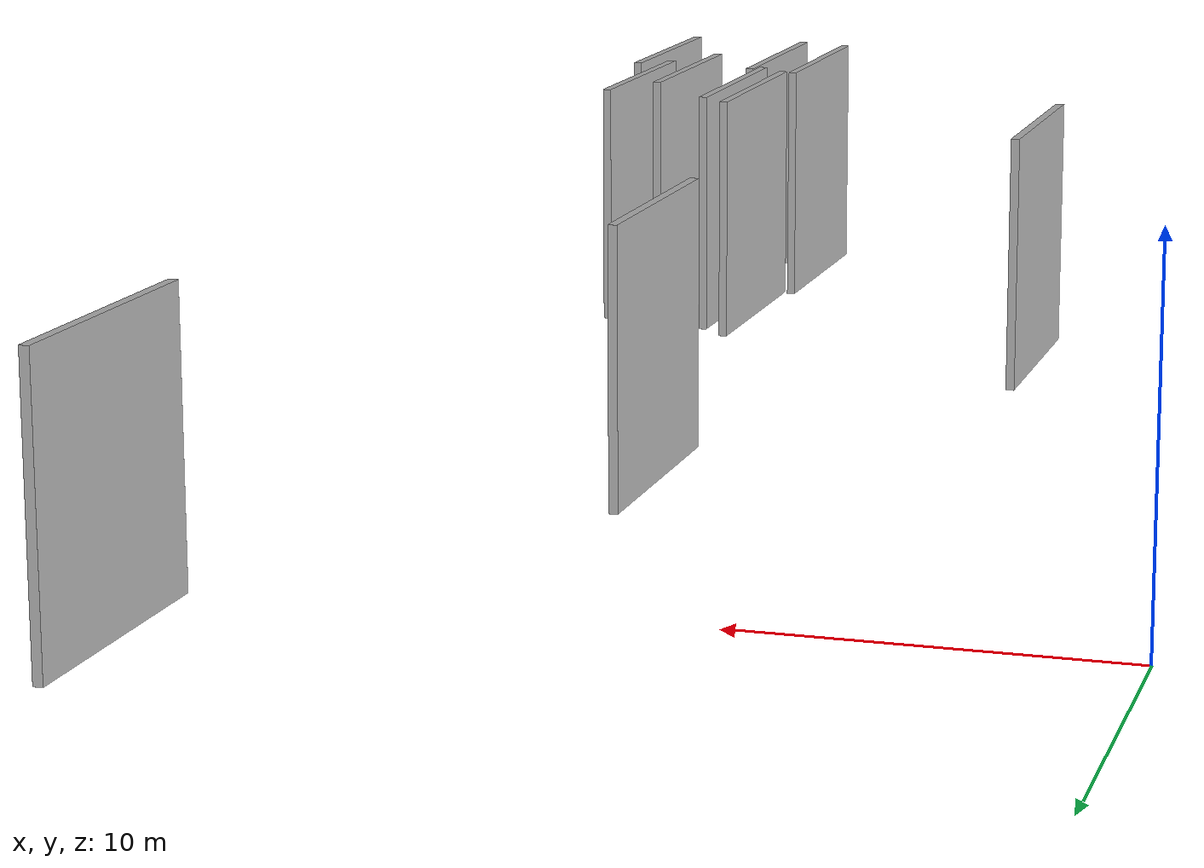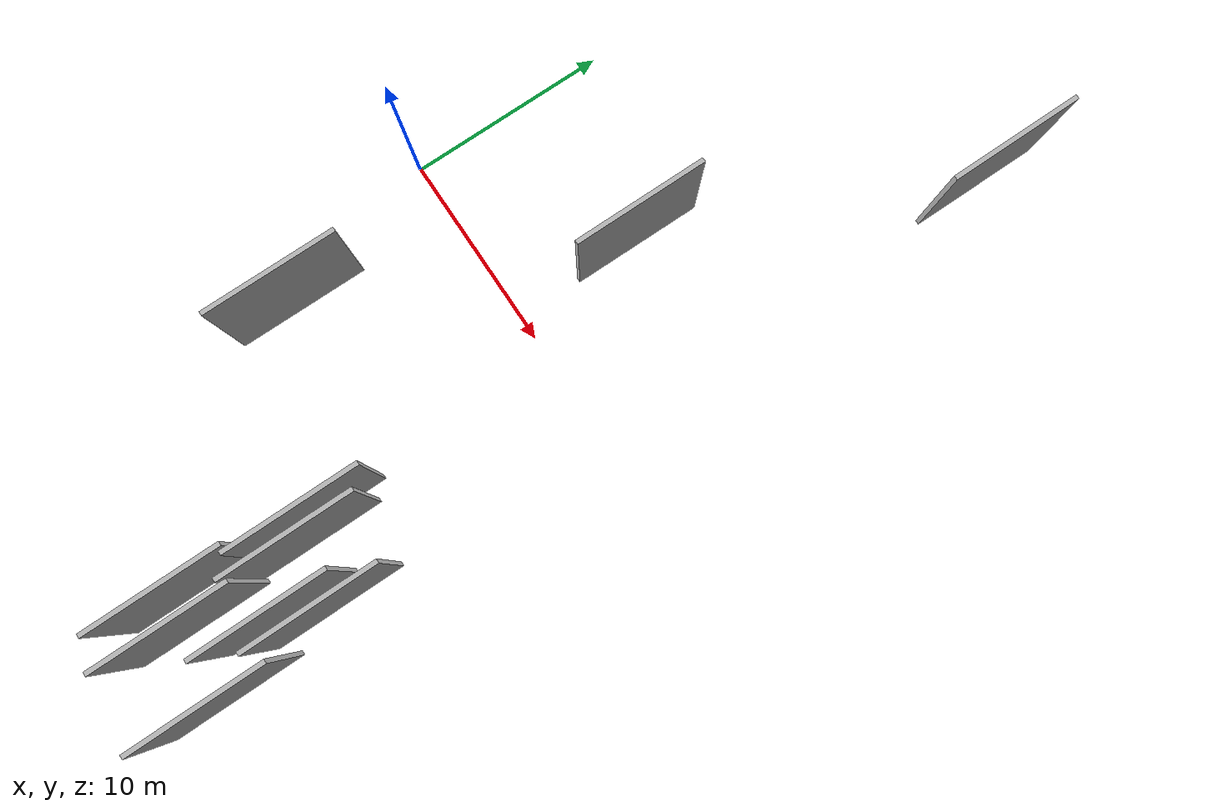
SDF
<sdf version="1.6">
 <world name="default">
  <scene>
   <sky><clouds><speed>12</speed></clouds></sky>
   <ambient>0.4 0.4 0.4 1</ambient>
   <background>0.7 0.7 0.7 1</background>
   <shadows>1</shadows>
  </scene>
  <gravity>0 0 -9.8066</gravity>
  <magnetic_field>6e-06 2.3e-05 -4.2e-05</magnetic_field>
  <physics default="0" name="default_physics" type="ode">
   <ode>
    <solver>
     <type>quick</type>
     <iters>10</iters>
     <sor>1.0</sor>
     <use_dynamic_moi_rescaling>0</use_dynamic_moi_rescaling>
    </solver>
    <constraints>
     <cfm>0</cfm>
     <erp>0.2</erp>
     <contact_max_correcting_vel>100</contact_max_correcting_vel>
     <contact_surface_layer>0.001</contact_surface_layer>
    </constraints>
   </ode>
   <max_step_size>0.004</max_step_size>
   <real_time_factor>1</real_time_factor>
   <real_time_update_rate>250</real_time_update_rate>
  </physics>
  <light name="sun" type="directional">
   <pose>0 0 10 0 0 0</pose>
   <diffuse>0.8 0.8 0.8 1</diffuse>
   <specular>0.2 0.2 0.2 1</specular>
   <attenuation>
    <range>1000</range>
    <constant>0.9</constant>
    <linear>0.01</linear>
    <quadratic>0.001</quadratic>
   </attenuation>
   <direction>-0.5 0.1 -0.9</direction>
  </light>
  <model name="grey_wall_1">
   <static>1</static>
   <pose>15.9617 19.3279 5.0 0.000000 0.000000 1.570796</pose>
   <link name="link">
    <pose>0 0 3.00 0 0 0</pose>
    <collision name="collision"><geometry><box><size>6.00 0.2 6.00</size></box></geometry></collision>
    <visual name="visual">
     <cast_shadows>0</cast_shadows>
     <geometry><box><size>6.00 0.2 6.00</size></box></geometry>
     <material>
      <script>
       <uri>model://HANNAS_wall/materials/scripts</uri>
       <uri>model://HANNAS_wall/materials/textures</uri>
       <name>vrc/HANNAS_wall</name>
      </script>
     </material>
    </visual>
   </link>
  </model>
  <model name="grey_wall_2">
   <static>1</static>
   <pose>13.1244 -12.4977 5.0 0.000000 0.000000 1.570796</pose>
   <link name="link">
    <pose>0 0 3.00 0 0 0</pose>
    <collision name="collision"><geometry><box><size>6.00 0.2 6.00</size></box></geometry></collision>
    <visual name="visual">
     <cast_shadows>0</cast_shadows>
     <geometry><box><size>6.00 0.2 6.00</size></box></geometry>
     <material>
      <script>
       <uri>model://HANNAS_wall/materials/scripts</uri>
       <uri>model://HANNAS_wall/materials/textures</uri>
       <name>vrc/HANNAS_wall</name>
      </script>
     </material>
    </visual>
   </link>
  </model>
  <model name="grey_wall_3">
   <static>1</static>
   <pose>15.0418 -14.8376 5.0 0.000000 0.000000 1.570796</pose>
   <link name="link">
    <pose>0 0 3.00 0 0 0</pose>
    <collision name="collision"><geometry><box><size>6.00 0.2 6.00</size></box></geometry></collision>
    <visual name="visual">
     <cast_shadows>0</cast_shadows>
     <geometry><box><size>6.00 0.2 6.00</size></box></geometry>
     <material>
      <script>
       <uri>model://HANNAS_wall/materials/scripts</uri>
       <uri>model://HANNAS_wall/materials/textures</uri>
       <name>vrc/HANNAS_wall</name>
      </script>
     </material>
    </visual>
   </link>
  </model>
  <model name="grey_wall_4">
   <static>1</static>
   <pose>13.4086 -18.0849 5.0 0.000000 0.000000 1.570796</pose>
   <link name="link">
    <pose>0 0 3.00 0 0 0</pose>
    <collision name="collision"><geometry><box><size>6.00 0.2 6.00</size></box></geometry></collision>
    <visual name="visual">
     <cast_shadows>0</cast_shadows>
     <geometry><box><size>6.00 0.2 6.00</size></box></geometry>
     <material>
      <script>
       <uri>model://HANNAS_wall/materials/scripts</uri>
       <uri>model://HANNAS_wall/materials/textures</uri>
       <name>vrc/HANNAS_wall</name>
      </script>
     </material>
    </visual>
   </link>
  </model>
  <model name="grey_wall_5">
   <static>1</static>
   <pose>12.0958 -17.6185 5.0 0.000000 0.000000 1.570796</pose>
   <link name="link">
    <pose>0 0 3.00 0 0 0</pose>
    <collision name="collision"><geometry><box><size>6.00 0.2 6.00</size></box></geometry></collision>
    <visual name="visual">
     <cast_shadows>0</cast_shadows>
     <geometry><box><size>6.00 0.2 6.00</size></box></geometry>
     <material>
      <script>
       <uri>model://HANNAS_wall/materials/scripts</uri>
       <uri>model://HANNAS_wall/materials/textures</uri>
       <name>vrc/HANNAS_wall</name>
      </script>
     </material>
    </visual>
   </link>
  </model>
  <model name="grey_wall_6">
   <static>1</static>
   <pose>15.8767 -13.1310 5.0 0.000000 0.000000 1.570796</pose>
   <link name="link">
    <pose>0 0 3.00 0 0 0</pose>
    <collision name="collision"><geometry><box><size>6.00 0.2 6.00</size></box></geometry></collision>
    <visual name="visual">
     <cast_shadows>0</cast_shadows>
     <geometry><box><size>6.00 0.2 6.00</size></box></geometry>
     <material>
      <script>
       <uri>model://HANNAS_wall/materials/scripts</uri>
       <uri>model://HANNAS_wall/materials/textures</uri>
       <name>vrc/HANNAS_wall</name>
      </script>
     </material>
    </visual>
   </link>
  </model>
  <model name="grey_wall_7">
   <static>1</static>
   <pose>4.2326 -7.8183 5.0 0.000000 0.000000 1.570796</pose>
   <link name="link">
    <pose>0 0 3.00 0 0 0</pose>
    <collision name="collision"><geometry><box><size>6.00 0.2 6.00</size></box></geometry></collision>
    <visual name="visual">
     <cast_shadows>0</cast_shadows>
     <geometry><box><size>6.00 0.2 6.00</size></box></geometry>
     <material>
      <script>
       <uri>model://HANNAS_wall/materials/scripts</uri>
       <uri>model://HANNAS_wall/materials/textures</uri>
       <name>vrc/HANNAS_wall</name>
      </script>
     </material>
    </visual>
   </link>
  </model>
  <model name="grey_wall_8">
   <static>1</static>
   <pose>12.4023 -11.8223 5.0 0.000000 0.000000 1.570796</pose>
   <link name="link">
    <pose>0 0 3.00 0 0 0</pose>
    <collision name="collision"><geometry><box><size>6.00 0.2 6.00</size></box></geometry></collision>
    <visual name="visual">
     <cast_shadows>0</cast_shadows>
     <geometry><box><size>6.00 0.2 6.00</size></box></geometry>
     <material>
      <script>
       <uri>model://HANNAS_wall/materials/scripts</uri>
       <uri>model://HANNAS_wall/materials/textures</uri>
       <name>vrc/HANNAS_wall</name>
      </script>
     </material>
    </visual>
   </link>
  </model>
  <model name="grey_wall_9">
   <static>1</static>
   <pose>16.6473 -18.4176 5.0 0.000000 0.000000 1.570796</pose>
   <link name="link">
    <pose>0 0 3.00 0 0 0</pose>
    <collision name="collision"><geometry><box><size>6.00 0.2 6.00</size></box></geometry></collision>
    <visual name="visual">
     <cast_shadows>0</cast_shadows>
     <geometry><box><size>6.00 0.2 6.00</size></box></geometry>
     <material>
      <script>
       <uri>model://HANNAS_wall/materials/scripts</uri>
       <uri>model://HANNAS_wall/materials/textures</uri>
       <name>vrc/HANNAS_wall</name>
      </script>
     </material>
    </visual>
   </link>
  </model>
  <model name="grey_wall_10">
   <static>1</static>
   <pose>9.8851 5.6373 5.0 0.000000 0.000000 1.570796</pose>
   <link name="link">
    <pose>0 0 3.00 0 0 0</pose>
    <collision name="collision"><geometry><box><size>6.00 0.2 6.00</size></box></geometry></collision>
    <visual name="visual">
     <cast_shadows>0</cast_shadows>
     <geometry><box><size>6.00 0.2 6.00</size></box></geometry>
     <material>
      <script>
       <uri>model://HANNAS_wall/materials/scripts</uri>
       <uri>model://HANNAS_wall/materials/textures</uri>
       <name>vrc/HANNAS_wall</name>
      </script>
     </material>
    </visual>
   </link>
  </model>
 </world>
</sdf>
